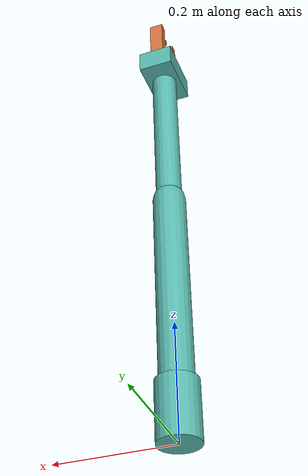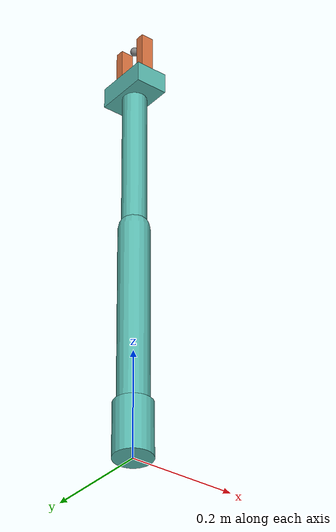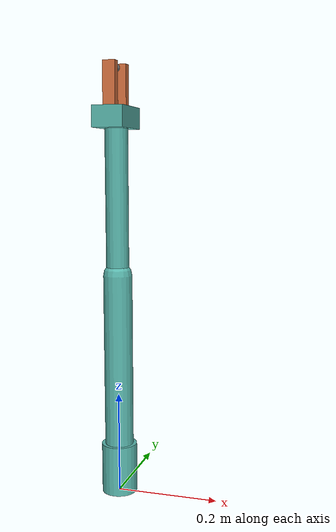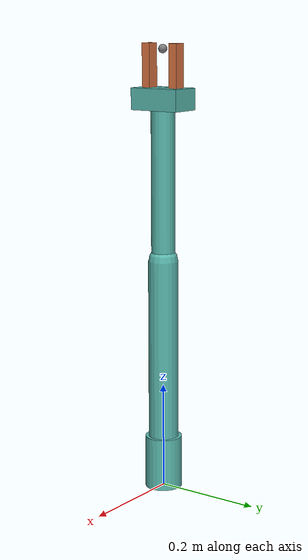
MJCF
<mujoco model="arm_gripper">
  <compiler angle="radian"/>
  <default>
    <joint damping="0.5"/>
    <geom rgba="0.35 0.72 0.68 1"/>
    <default class="finger">
      <geom type="box" size="0.012 0.008 0.045" rgba="0.85 0.45 0.25 1" friction="1.4 0.02 0.001"/>
    </default>
  </default>
  <worldbody>
    <body name="base" pos="0 0 0.05">
      <geom type="cylinder" size="0.035 0.05" mass="4"/>
      <body name="shoulder" pos="0 0 0.05">
        <joint name="yaw" type="hinge" axis="0 0 1" range="-2.6 2.6"/>
        <joint name="lift" type="hinge" axis="0 1 0" range="-2.0 2.4"/>
        <geom type="capsule" fromto="0 0 0 0 0 0.34" size="0.028" mass="1.6"/>
        <body name="forearm" pos="0 0 0.34">
          <joint name="elbow" type="hinge" axis="0 1 0" range="-2.6 2.6"/>
          <geom type="capsule" fromto="0 0 0 0 0 0.30" size="0.022" mass="1.1"/>
          <body name="wrist" pos="0 0 0.30">
            <joint name="pitch" type="hinge" axis="0 1 0" range="-2.4 2.4"/>
            <geom type="box" size="0.03 0.05 0.02" mass="0.35"/>
            <site name="grasp" pos="0 0 0.09" size="0.008"/>
            <body name="left_finger" pos="0 0.030 0.055">
              <joint name="left" type="slide" axis="0 1 0" range="-0.024 0.010"/>
              <geom class="finger"/>
            </body>
            <body name="right_finger" pos="0 -0.030 0.055">
              <joint name="right" type="slide" axis="0 1 0" range="-0.010 0.024"/>
              <geom class="finger"/>
            </body>
          </body>
        </body>
      </body>
    </body>
  </worldbody>
  <keyframe>
    <key name="ready" qpos="0 0.30 0.95 -0.15 0 0"/>
  </keyframe>
  <equality>
    <joint joint1="right" joint2="left" polycoef="0 -1"/>
  </equality>
</mujoco>
